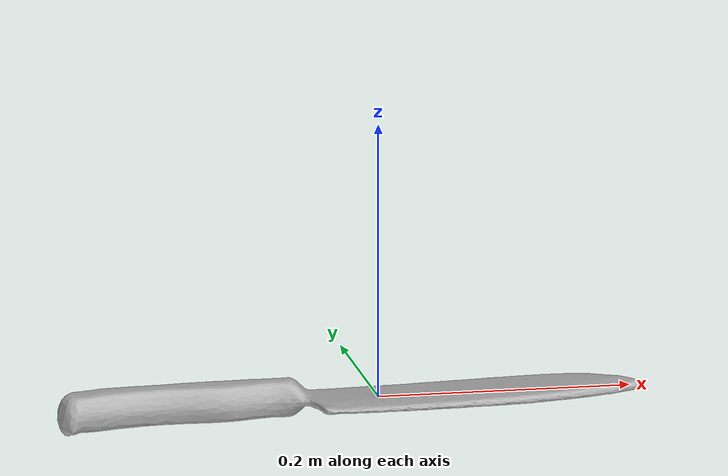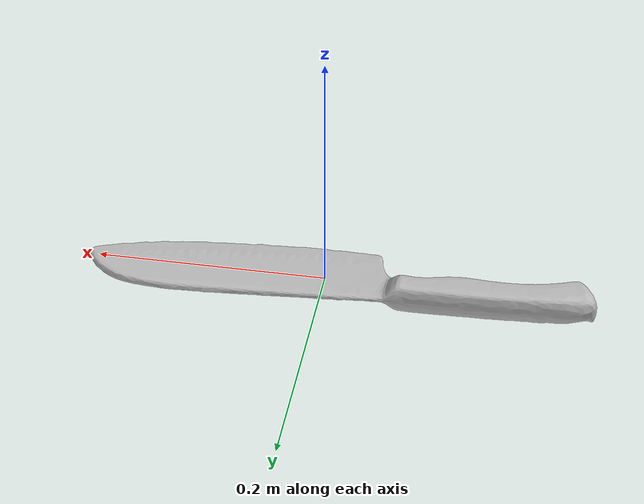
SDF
<?xml version='1.0'?>
<sdf version='1.6'>
	<model name='a_knifekitchen2'>
		<static>false</static>
		<pose>0 0 0 0 0 0</pose>

		<link name='link'>
			<inertial>
			<mass>0.18</mass>
			<pose>0.0020611 -0.0005695 0.00029406 0 0 0</pose>
				<inertia>
					<ixx>9.051e-06</ixx>
					<ixy>0</ixy>
					<ixz>0</ixz>
					<iyy>8.8029e-06</iyy>
					<iyz>0</iyz>
					<izz>1.0704e-06</izz>
				</inertia>
			</inertial>
			<sensor name="tool_contact_sensor" type="contact">
				<always_on>true</always_on>
				<update_rate>30.0</update_rate>
				<contact>
					<collision>collision</collision>
				</contact>
				<plugin name="tool_bumper" filename="libgazebo_ros_bumper.so">
					<bumperTopicName>tool_contact_sensor_state</bumperTopicName>
					<frameName>world</frameName>
				</plugin>
			</sensor>
			<collision name='collision'>
				<geometry>
					<mesh>
						<uri>model://a_knifekitchen2/a_knifekitchen2.dae</uri>
					</mesh>
				</geometry>
				<surface>
					<friction>
						<ode>
							<mu>0.2</mu>
							<mu2>0.2</mu2>
						</ode>
					</friction>
				</surface>
			</collision>
			<visual name='visual'>
				<geometry>
					<mesh>
						<uri>model://a_knifekitchen2/a_knifekitchen2.dae</uri>
					</mesh>
				</geometry>
			</visual>
		</link>
	</model>
</sdf>
